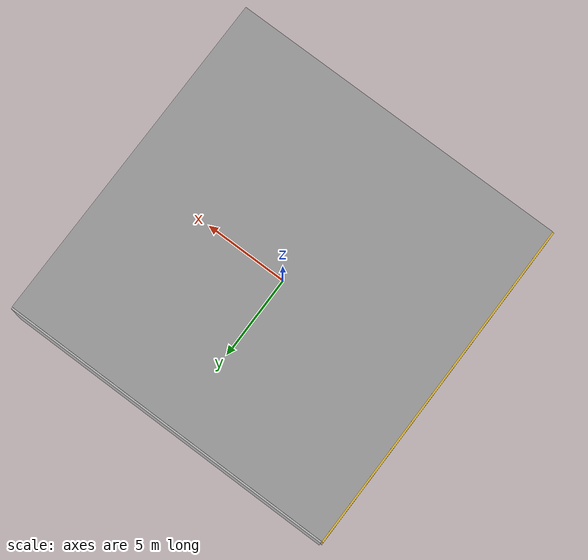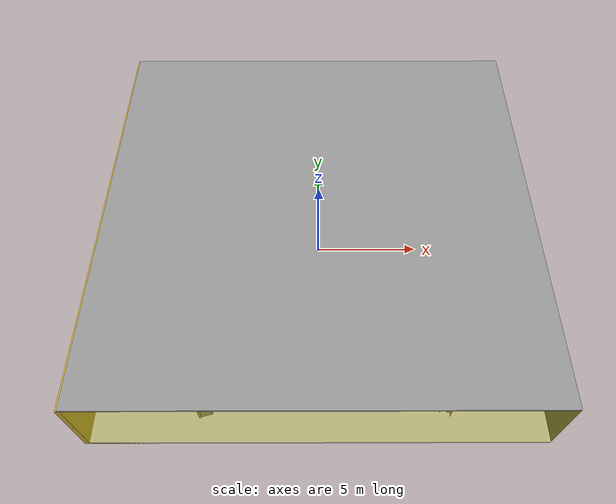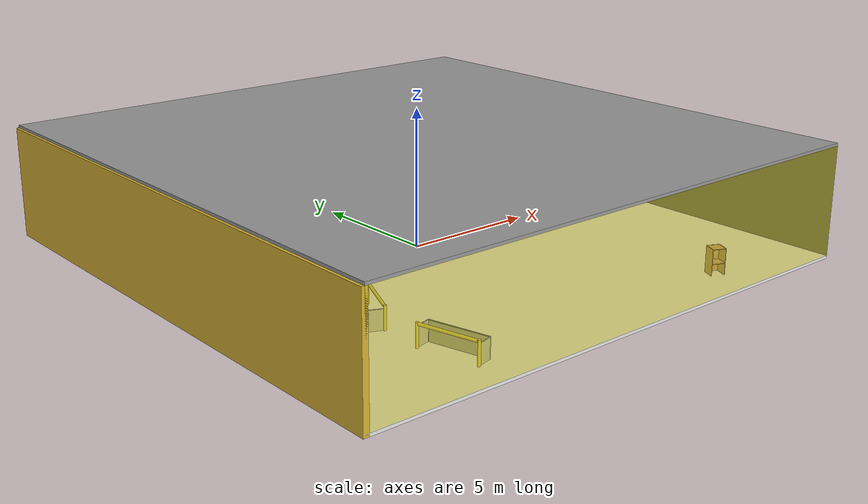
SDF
<sdf version="1.4">
 <world name="default">
  <physics type="ode">
   <max_step_size>0.001</max_step_size>
   <real_time_factor>1</real_time_factor>
   <real_time_update_rate>1000</real_time_update_rate>
   <gravity>0 0 -9.8</gravity>
  </physics>
  <scene><ambient>0.4 0.4 0.4 1</ambient><background>0.7 0.7 0.7 1</background><shadows>1</shadows></scene>
  <model name="Surrounding">
   <static>1</static>
   <link name="Ceiling">
    <collision name="Ceiling_Collision"><geometry><box><size>20 20 0.1</size></box></geometry></collision>
    <visual name="Ceiling_Visual">
     <geometry><box><size>20 20 0.1</size></box></geometry>
     <material>
      <script><uri>file://media/materials/scripts/gazebo.material</uri><name>Gazebo/Grey</name></script>
     </material>
    </visual>
    <pose>0 0 4.05 0 0 0</pose>
   </link>
   <link name="Wall_South">
    <collision name="Wall_South_Collision">
     <geometry><box><size>20 0 4</size></box></geometry>
     <pose>0 0 2 0 -0 0</pose>
    </collision>
    <visual name="Wall_South_Visual">
     <pose>0 0 2 0 -0 0</pose>
     <geometry><box><size>20 0 4</size></box></geometry>
     <material>
      <script>
       <uri>file://media/materials/scripts/gazebo.material</uri>
       <name>Gazebo/YellowTransparent</name>
      </script>
     </material>
    </visual>
    <velocity_decay><linear>0</linear><angular>0</angular></velocity_decay>
    <pose>0 -10 0 0 -0 0</pose>
   </link>
   <link name="Wall_East">
    <collision name="Wall_21_Collision">
     <geometry><box><size>20 0 4</size></box></geometry>
     <pose>0 0 2 0 -0 0</pose>
    </collision>
    <visual name="Wall_21_Visual">
     <pose>0 0 2 0 -0 0</pose>
     <geometry><box><size>20 0 4</size></box></geometry>
     <material>
      <script><uri>file://media/materials/scripts/gazebo.material</uri><name>Gazebo/DarkGrey</name></script>
     </material>
    </visual>
    <velocity_decay><linear>0</linear><angular>0</angular></velocity_decay>
    <pose>10 0 0 0 -0 1.5708</pose>
   </link>
   <link name="Wall_North">
    <collision name="Wall_22_Collision">
     <geometry><box><size>20 0.2 4</size></box></geometry>
     <pose>0 0 2 0 -0 0</pose>
    </collision>
    <visual name="Wall_22_Visual">
     <pose>0 0 2 0 -0 0</pose>
     <geometry><box><size>20 0.2 4</size></box></geometry>
     <material>
      <script><uri>file://media/materials/scripts/gazebo.material</uri><name>Gazebo/PioneerBody</name></script>
     </material>
    </visual>
    <velocity_decay><linear>0</linear><angular>0</angular></velocity_decay>
    <pose>0 10 0 0 -0 0</pose>
   </link>
   <link name="Wall_West">
    <collision name="Wall_23_Collision">
     <geometry><box><size>20 0.2 4</size></box></geometry>
     <pose>0 0 2 0 -0 0</pose>
    </collision>
    <visual name="Wall_23_Visual">
     <pose>0 0 2 0 -0 0</pose>
     <geometry><box><size>20 0.2 4</size></box></geometry>
     <material>
      <script><uri>file://media/materials/scripts/gazebo.material</uri><name>Gazebo/Gold</name></script>
     </material>
    </visual>
    <velocity_decay><linear>0</linear><angular>0</angular></velocity_decay>
    <pose>-10 0 0 0 0 -1.5708</pose>
   </link>
   <link name="Ground_link">
    <collision name="collision">
     <pose>0 0 .05 0 -0 0</pose>
     <geometry><box><size>20 20 0.1</size></box></geometry>
    </collision>
    <visual name="visual">
     <pose>0 0 .05 0 -0 0</pose>
     <geometry><box><size>20 20 0.1</size></box></geometry>
     <material>
      <script><uri>file://media/materials/scripts/gazebo.material</uri><name>Gazebo/White</name></script>
     </material>
    </visual>
   </link>
   <static>1</static>
  </model>
  <spherical_coordinates>
   <surface_model>EARTH_WGS84</surface_model>
   <latitude_deg>0</latitude_deg>
   <longitude_deg>0</longitude_deg>
   <elevation>0</elevation>
   <heading_deg>0</heading_deg>
  </spherical_coordinates>
  <light name="lightball_0" type="diffuse">
   <diffuse>0.8 0.8 0.8 1</diffuse>
   <specular>0.2 0.2 0.2 1</specular>
   <attenuation>
    <range>100</range>
    <constant>0.7</constant>
    <linear>0.01</linear>
    <quadratic>0.001</quadratic>
   </attenuation>
   <direction>-0.5 0.1 -0.9</direction>
   <pose>-8.74071152039 -2.06309667729 1.18032369281 0 0 0</pose>
  </light>
  <light name="lightball_1" type="diffuse">
   <diffuse>0.8 0.8 0.8 1</diffuse>
   <specular>0.2 0.2 0.2 1</specular>
   <attenuation>
    <range>100</range>
    <constant>0.7</constant>
    <linear>0.01</linear>
    <quadratic>0.001</quadratic>
   </attenuation>
   <direction>-0.5 0.1 -0.9</direction>
   <pose>-6.55410046825 3.81369525009 0.839808673883 0 0 0</pose>
  </light>
  <light name="lightball_2" type="diffuse">
   <diffuse>0.8 0.8 0.8 1</diffuse>
   <specular>0.2 0.2 0.2 1</specular>
   <attenuation>
    <range>100</range>
    <constant>0.7</constant>
    <linear>0.01</linear>
    <quadratic>0.001</quadratic>
   </attenuation>
   <direction>-0.5 0.1 -0.9</direction>
   <pose>5.28950788423 -0.468486372943 1.1691394867 0 0 0</pose>
  </light>
  <light name="lightball_3" type="diffuse">
   <diffuse>0.8 0.8 0.8 1</diffuse>
   <specular>0.2 0.2 0.2 1</specular>
   <attenuation>
    <range>100</range>
    <constant>0.7</constant>
    <linear>0.01</linear>
    <quadratic>0.001</quadratic>
   </attenuation>
   <direction>-0.5 0.1 -0.9</direction>
   <pose>-4.05634985434 -2.6780531143 2.42052948787 0 0 0</pose>
  </light>
  <light name="lightball_4" type="diffuse">
   <diffuse>0.8 0.8 0.8 1</diffuse>
   <specular>0.2 0.2 0.2 1</specular>
   <attenuation>
    <range>100</range>
    <constant>0.7</constant>
    <linear>0.01</linear>
    <quadratic>0.001</quadratic>
   </attenuation>
   <direction>-0.5 0.1 -0.9</direction>
   <pose>-1.09815094227 -1.46509662543 3.6612410435 0 0 0</pose>
  </light>
  <light name="lightball_5" type="diffuse">
   <diffuse>0.8 0.8 0.8 1</diffuse>
   <specular>0.2 0.2 0.2 1</specular>
   <attenuation>
    <range>100</range>
    <constant>0.7</constant>
    <linear>0.01</linear>
    <quadratic>0.001</quadratic>
   </attenuation>
   <direction>-0.5 0.1 -0.9</direction>
   <pose>6.10626882163 -2.2934089659 2.39824121257 0 0 0</pose>
  </light>
  <include>
   <uri>model://robocup_3Dsim_goal</uri>
   <pose>-5.4903365584 -7.87623314388 0 0 0 0.249251666367</pose>
  </include>
  <include>
   <uri>model://robocup_3Dsim_goal</uri>
   <pose>-5.23882496571 -4.3188954581 0 0 0 2.73251994674</pose>
  </include>
  <include><uri>model://table</uri><pose>-4.132043043 1.66987995028 0 0 0 2.22658577005</pose></include>
  <include><uri>model://cabinet</uri><pose>-3.49881755371 7.25137876142 0 0 0 0.609035269226</pose></include>
  <include><uri>model://cabinet</uri><pose>5.6402449974 -8.58707537164 0 0 0 1.14139765134</pose></include>
  <include>
   <uri>model://construction_cone</uri>
   <pose>7.82921611027 6.31900429975 0 0 0 1.00858898763</pose>
  </include>
 </world>
</sdf>

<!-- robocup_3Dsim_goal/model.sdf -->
<sdf version="1.5">
  <model name="robocup_3d_goal">
    <static>true</static>
    <link name="left_post">
      <pose>0 1.05 0.45 0 0 0</pose>
      <collision name="collision">
        <geometry>
          <cylinder>
            <radius>0.05</radius>
            <length>0.9</length>
          </cylinder>
        </geometry>
      </collision>
      <visual name="visual">
        <geometry>
          <cylinder>
            <radius>0.05</radius>
            <length>0.9</length>
          </cylinder>
        </geometry>
        <material>
          <script>
            <uri>file://media/materials/scripts/gazebo.material</uri>
            <name>Gazebo/ZincYellow</name>
          </script>
        </material>
      </visual>
    </link>
    <link name="left_support_horiz_lower">
      <pose>0.30 1.05 0.01 0 0 0</pose>
      <collision name="collision">
        <geometry>
          <box>
            <size>0.50 0.02 0.02</size>
          </box>
        </geometry>
      </collision>
      <visual name="visual">
        <geometry>
          <box>
            <size>0.50 0.02 0.02</size>
          </box>
        </geometry>
        <material>
          <script>
            <uri>file://media/materials/scripts/gazebo.material</uri>
            <name>Gazebo/White</name>
          </script>
        </material>
      </visual>
    </link>
    <link name="left_support_horiz_upper">
      <pose>0.30 1.05 0.79 0 0 0</pose>
      <collision name="collision">
        <geometry>
          <box>
            <size>0.50 0.02 0.02</size>
          </box>
        </geometry>
      </collision>
      <visual name="visual">
        <geometry>
          <box>
            <size>0.50 0.02 0.02</size>
          </box>
        </geometry>
        <material>
          <script>
            <uri>file://media/materials/scripts/gazebo.material</uri>
            <name>Gazebo/White</name>
          </script>
        </material>
      </visual>
    </link>
    <link name="left_support_vertical">
      <pose>0.56 1.05 0.4 0 1.5708 0</pose>
      <collision name="collision">
        <geometry>
          <box>
            <size>0.80 0.02 0.02</size>
          </box>
        </geometry>
      </collision>
      <visual name="visual">
        <geometry>
          <box>
            <size>0.80 0.02 0.02</size>
          </box>
        </geometry>
        <material>
          <script>
            <uri>file://media/materials/scripts/gazebo.material</uri>
            <name>Gazebo/White</name>
          </script>
        </material>
      </visual>
    </link>
    <link name="right_support_horiz_lower">
      <pose>0.30 -1.05 0.01 0 0 0</pose>
      <collision name="collision">
        <geometry>
          <box>
            <size>0.50 0.02 0.02</size>
          </box>
        </geometry>
      </collision>
      <visual name="visual">
        <geometry>
          <box>
            <size>0.50 0.02 0.02</size>
          </box>
        </geometry>
        <material>
          <script>
            <uri>file://media/materials/scripts/gazebo.material</uri>
            <name>Gazebo/White</name>
          </script>
        </material>
      </visual>
    </link>
    <link name="right_support_horiz_upper">
      <pose>0.30 -1.05 0.79 0 0 0</pose>
      <collision name="collision">
        <geometry>
          <box>
            <size>0.50 0.02 0.02</size>
          </box>
        </geometry>
      </collision>
      <visual name="visual">
        <geometry>
          <box>
            <size>0.50 0.02 0.02</size>
          </box>
        </geometry>
        <material>
          <script>
            <uri>file://media/materials/scripts/gazebo.material</uri>
            <name>Gazebo/White</name>
          </script>
        </material>
      </visual>
    </link>
    <link name="right_support_vertical">
      <pose>0.56 -1.05 0.4 0 1.5708 0</pose>
      <collision name="collision">
        <geometry>
          <box>
            <size>0.80 0.02 0.02</size>
          </box>
        </geometry>
      </collision>
      <visual name="visual">
        <geometry>
          <box>
            <size>0.80 0.02 0.02</size>
          </box>
        </geometry>
        <material>
          <script>
            <uri>file://media/materials/scripts/gazebo.material</uri>
            <name>Gazebo/White</name>
          </script>
        </material>
      </visual>
    </link>
    <link name="center_support_horiz_lower">
      <pose>0.56 0 0.01 0 1.5708 0</pose>
      <collision name="collision">
        <geometry>
          <box>
            <size>0.02 2.08 0.02</size>
          </box>
        </geometry>
      </collision>
      <visual name="visual">
        <geometry>
          <box>
            <size>0.02 2.08 0.02</size>
          </box>
        </geometry>
        <material>
          <script>
            <uri>file://media/materials/scripts/gazebo.material</uri>
            <name>Gazebo/White</name>
          </script>
        </material>
      </visual>
    </link>
    <link name="center_support_horiz_upper">
      <pose>0.56 0 0.79 0 1.5708 0</pose>
      <collision name="collision">
        <geometry>
          <box>
            <size>0.02 2.08 0.02</size>
          </box>
        </geometry>
      </collision>
      <visual name="visual">
        <geometry>
          <box>
            <size>0.02 2.08 0.02</size>
          </box>
        </geometry>
        <material>
          <script>
            <uri>file://media/materials/scripts/gazebo.material</uri>
            <name>Gazebo/White</name>
          </script>
        </material>
      </visual>
    </link>
    <link name="right_post">
      <pose>0 -1.05 0.45 0 0 0</pose>
      <collision name="collision">
        <geometry>
          <cylinder>
            <radius>0.05</radius>
            <length>0.9</length>
          </cylinder>
        </geometry>
      </collision>
      <visual name="visual">
        <geometry>
          <cylinder>
            <radius>0.05</radius>
            <length>0.9</length>
          </cylinder>
        </geometry>
        <material>
          <script>
            <uri>file://media/materials/scripts/gazebo.material</uri>
            <name>Gazebo/ZincYellow</name>
          </script>
        </material>
      </visual>
    </link>
    <link name="crossbar">
      <pose>0 0 0.85 1.57 1.57 0</pose>
      <collision name="collision">
        <geometry>
          <cylinder>
            <radius>0.05</radius>
            <length>2.0</length>
          </cylinder>
        </geometry>
      </collision>
      <visual name="visual">
        <geometry>
          <cylinder>
            <radius>0.05</radius>
            <length>2.0</length>
          </cylinder>
        </geometry>
        <material>
          <script>
            <uri>file://media/materials/scripts/gazebo.material</uri>
            <name>Gazebo/ZincYellow</name>
          </script>
        </material>
      </visual>
    </link>
    <link name="center_net">
      <pose>0.56 0 0.40 0 0 0</pose>
      <collision name="collision">
        <geometry>
          <box>
            <size>0.01 2.1 0.80</size>
          </box>
        </geometry>
      </collision>
      <visual name="visual">
        <geometry>
          <box>
            <size>0.01 2.1 0.80</size>
          </box>
        </geometry>
        <material>
          <script>
            <uri>model://../model_source/models/robocup09_spl_field/materials/scripts/</uri>
            <uri>model://../model_source/models/robocup09_spl_field/materials/textures/</uri>
            <name>RoboCup/Net</name>
          </script>
        </material>
      </visual>
    </link>
    <link name="left_net">
      <pose>0.30 1.05 0.40 0 0 0</pose>
      <collision name="collision">
        <geometry>
          <box>
            <size>0.50 0.01 0.76</size>
          </box>
        </geometry>
      </collision>
      <visual name="visual">
        <geometry>
          <box>
            <size>0.50 0.01 0.76</size>
          </box>
        </geometry>
        <material>
          <script>
            <uri>model://../model_source/models/robocup09_spl_field/materials/scripts/</uri>
            <uri>model://../model_source/models/robocup09_spl_field/materials/textures/</uri>
            <name>RoboCup/Net</name>
          </script>
        </material>
      </visual>
    </link>
    <link name="right_net">
      <pose>0.30 -1.05 0.40 0 0 0</pose>
      <collision name="collision">
        <geometry>
          <box>
            <size>0.50 0.01 0.76</size>
          </box>
        </geometry>
      </collision>
      <visual name="visual">
        <geometry>
          <box>
            <size>0.50 0.01 0.76</size>
          </box>
        </geometry>
        <material>
          <script>
            <uri>model://../model_source/models/robocup09_spl_field/materials/scripts/</uri>
            <uri>model://../model_source/models/robocup09_spl_field/materials/textures/</uri>
            <name>RoboCup/Net</name>
          </script>
        </material>
      </visual>
    </link>
  </model>
</sdf>

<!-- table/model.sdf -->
<sdf version="1.5">
  <model name="table">
    <static>true</static>
    <link name="link">
      <collision name="surface">
        <pose>0 0 1.0 0 0 0</pose>
        <geometry>
          <box>
            <size>1.5 0.8 0.03</size>
          </box>
        </geometry>
        <surface>
          <friction>
            <ode>
              <mu>0.6</mu>
              <mu2>0.6</mu2>
            </ode>
          </friction>
        </surface>
      </collision>
      <visual name="visual1">
        <pose>0 0 1.0 0 0 0</pose>
        <geometry>
          <box>
            <size>1.5 0.8 0.03</size>
          </box>
        </geometry>
        <material>
          <script>
            <uri>model://media/materials/scripts/gazebo.material</uri>
            <name>Gazebo/Wood</name>
          </script>
        </material>
      </visual>
      <collision name="front_left_leg">
        <pose>0.68 0.38 0.5 0 0 0</pose>
        <geometry>
          <cylinder>
            <radius>0.02</radius>
            <length>1.0</length>
          </cylinder>
        </geometry>
      </collision>
      <visual name="front_left_leg">
        <pose>0.68 0.38 0.5 0 0 0</pose>
        <geometry>
          <cylinder>
            <radius>0.02</radius>
            <length>1.0</length>
          </cylinder>
        </geometry>
        <material>
          <script>
            <uri>model://media/materials/scripts/gazebo.material</uri>
            <name>Gazebo/Grey</name>
          </script>
        </material>
      </visual>
      <collision name="front_right_leg">
        <pose>0.68 -0.38 0.5 0 0 0</pose>
        <geometry>
          <cylinder>
            <radius>0.02</radius>
            <length>1.0</length>
          </cylinder>
        </geometry>
      </collision>
      <visual name="front_right_leg">
        <pose>0.68 -0.38 0.5 0 0 0</pose>
        <geometry>
          <cylinder>
            <radius>0.02</radius>
            <length>1.0</length>
          </cylinder>
        </geometry>
        <material>
          <script>
            <uri>model://media/materials/scripts/gazebo.material</uri>
            <name>Gazebo/Grey</name>
          </script>
        </material>
      </visual>
      <collision name="back_right_leg">
        <pose>-0.68 -0.38 0.5 0 0 0</pose>
        <geometry>
          <cylinder>
            <radius>0.02</radius>
            <length>1.0</length>
          </cylinder>
        </geometry>
      </collision>
      <visual name="back_right_leg">
        <pose>-0.68 -0.38 0.5 0 0 0</pose>
        <geometry>
          <cylinder>
            <radius>0.02</radius>
            <length>1.0</length>
          </cylinder>
        </geometry>
        <material>
          <script>
            <uri>model://media/materials/scripts/gazebo.material</uri>
            <name>Gazebo/Grey</name>
          </script>
        </material>
      </visual>
      <collision name="back_left_leg">
        <pose>-0.68 0.38 0.5 0 0 0</pose>
        <geometry>
          <cylinder>
            <radius>0.02</radius>
            <length>1.0</length>
          </cylinder>
        </geometry>
      </collision>
      <visual name="back_left_leg">
        <pose>-0.68 0.38 0.5 0 0 0</pose>
        <geometry>
          <cylinder>
            <radius>0.02</radius>
            <length>1.0</length>
          </cylinder>
        </geometry>
        <material>
          <script>
            <uri>model://media/materials/scripts/gazebo.material</uri>
            <name>Gazebo/Grey</name>
          </script>
        </material>
      </visual>
    </link>
  </model>
</sdf>

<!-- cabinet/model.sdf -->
<sdf version="1.5">
  <model name="cabinet">
    <static>true</static>
    <link name="cabinet_bottom_plate">
      <inertial>
        <pose>0 0 -1 0 0 0</pose>
        <inertia>
          <ixx>2.050000</ixx>
          <ixy>0</ixy>
          <ixz>0</ixz>
          <iyy>2.050000</iyy>
          <iyz>0</iyz>
          <izz>2.050000</izz>
        </inertia>
        <mass>25.000000</mass>
      </inertial>
      <collision name="cabinet_bottom_plate_geom">
        <pose>0 0 0.010000 0 0 0</pose>
        <geometry>
          <box>
            <size>0.450000 0.450000 0.020000</size>
          </box>
        </geometry>
      </collision>
      <visual name="cabinet_bottom_plate_geom_visual">
        <pose>0 0 0.010000 0 0 0</pose>
        <geometry>
          <box>
            <size>0.450000 0.450000 0.020000</size>
          </box>
        </geometry>
        <material>
          <script>
            <uri>model://media/materials/scripts/gazebo.material</uri>
            <name>Gazebo/Wood</name>
          </script>
        </material>
      </visual>
      <collision name="cabinet_bottom_plate_geom_cabinet_back_plate">
        <pose>0.235000 0 0.510000 0 0 0</pose>
        <geometry>
          <box>
            <size>0.020000 0.450000 1.020000</size>
          </box>
        </geometry>
      </collision>
      <visual name="cabinet_bottom_plate_geom_cabinet_back_plate_visual">
        <pose>0.235000 0 0.510000 0 0 0</pose>
        <geometry>
          <box>
            <size>0.020000 0.450000 1.020000</size>
          </box>
        </geometry>
        <material>
          <script>
            <uri>model://media/materials/scripts/gazebo.material</uri>
            <name>Gazebo/Wood</name>
          </script>
        </material>
      </visual>
      <collision name="cabinet_bottom_plate_geom_cabinet_left_plate">
        <pose>0 0.235000 0.510000 0 0 0</pose>
        <geometry>
          <box>
            <size>0.450000 0.020000 1.020000</size>
          </box>
        </geometry>
      </collision>
      <visual name="cabinet_bottom_plate_geom_cabinet_left_plate_visual">
        <pose>0 0.235000 0.510000 0 0 0</pose>
        <geometry>
          <box>
            <size>0.450000 0.020000 1.020000</size>
          </box>
        </geometry>
        <material>
          <script>
            <uri>model://media/materials/scripts/gazebo.material</uri>
            <name>Gazebo/Wood</name>
          </script>
        </material>
      </visual>
      <collision name="cabinet_bottom_plate_geom_cabinet_middle_plate">
        <pose>0 0 0.510000 0 0 0</pose>
        <geometry>
          <box>
            <size>0.450000 0.450000 0.020000</size>
          </box>
        </geometry>
      </collision>
      <visual name="cabinet_bottom_plate_geom_cabinet_middle_plate_visual">
        <pose>0 0 0.510000 0 0 0</pose>
        <geometry>
          <box>
            <size>0.450000 0.450000 0.020000</size>
          </box>
        </geometry>
        <material>
          <script>
            <uri>model://media/materials/scripts/gazebo.material</uri>
            <name>Gazebo/Wood</name>
          </script>
        </material>
      </visual>
      <collision name="cabinet_bottom_plate_geom_cabinet_right_plate">
        <pose>0 -0.235000 0.510000 0 0 0</pose>
        <geometry>
          <box>
            <size>0.450000 0.020000 1.020000</size>
          </box>
        </geometry>
      </collision>
      <visual name="cabinet_bottom_plate_geom_cabinet_right_plate_visual">
        <pose>0 -0.235000 0.510000 0 0 0</pose>
        <geometry>
          <box>
            <size>0.450000 0.020000 1.020000</size>
          </box>
        </geometry>
        <material>
          <script>
            <uri>model://media/materials/scripts/gazebo.material</uri>
            <name>Gazebo/Wood</name>
          </script>
        </material>
      </visual>
      <collision name="cabinet_bottom_plate_geom_cabinet_top_plate">
        <pose>0 0 1.010000 0 0 0</pose>
        <geometry>
          <box>
            <size>0.450000 0.450000 0.020000</size>
          </box>
        </geometry>
      </collision>
      <visual name="cabinet_bottom_plate_geom_cabinet_top_plate_visual">
        <pose>0 0 1.010000 0 0 0</pose>
        <geometry>
          <box>
            <size>0.450000 0.450000 0.020000</size>
          </box>
        </geometry>
        <material>
          <script>
            <uri>model://media/materials/scripts/gazebo.material</uri>
            <name>Gazebo/Wood</name>
          </script>
        </material>
      </visual>
    </link>
  </model>
</sdf>

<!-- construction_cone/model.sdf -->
<sdf version="1.5">
  <model name="Construction Cone">
    <link name="link">
      <collision name="collision">
        <geometry>
          <mesh>
            <scale>10 10 10</scale>
            <uri>file://isr-testbed/construction_cone/meshes/construction_cone.dae</uri>
          </mesh>
        </geometry>
      </collision>
      <visual name="visual">
        <geometry>
          <mesh>
            <scale>10 10 10</scale>
            <uri>file://isr-testbed/construction_cone/meshes/construction_cone.dae</uri>
          </mesh>
        </geometry>
      </visual>
    </link>
  </model>
</sdf>
